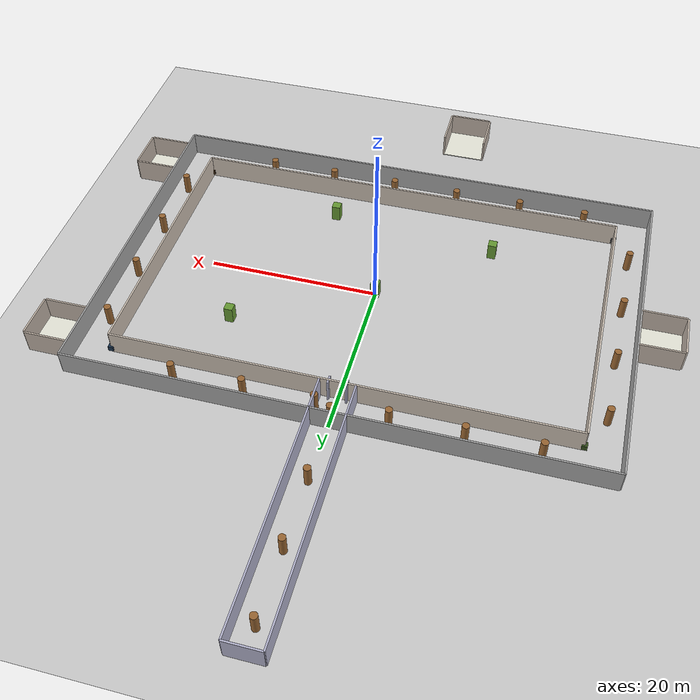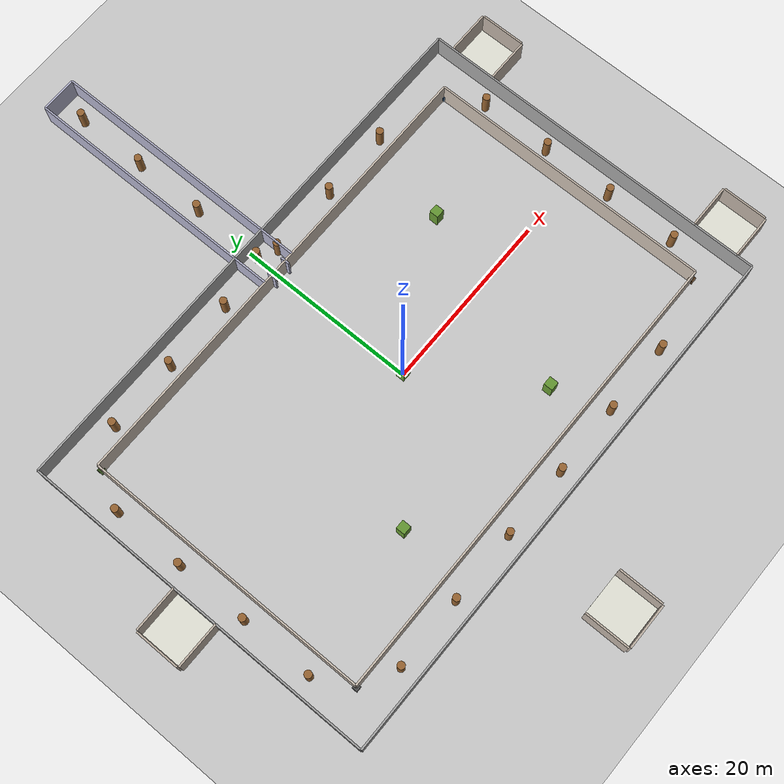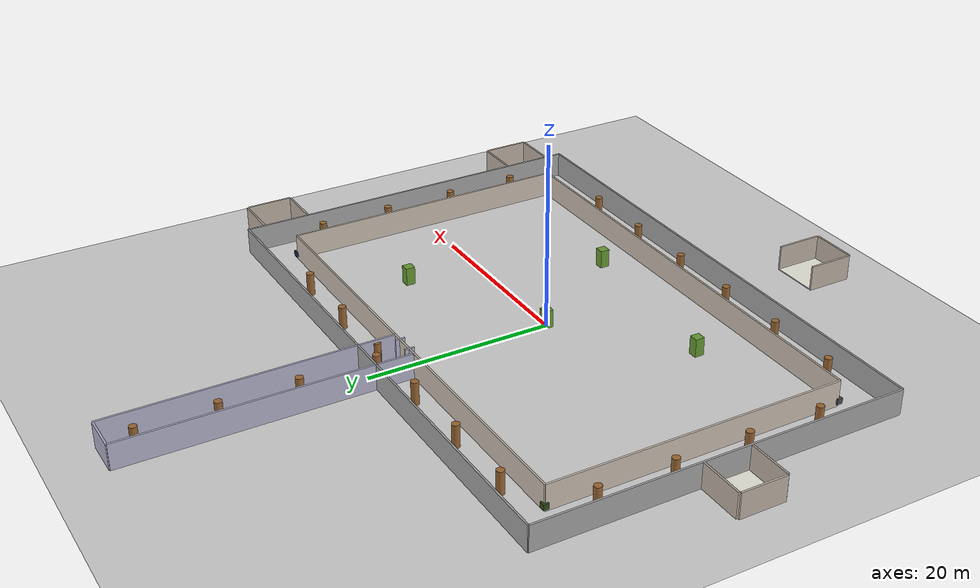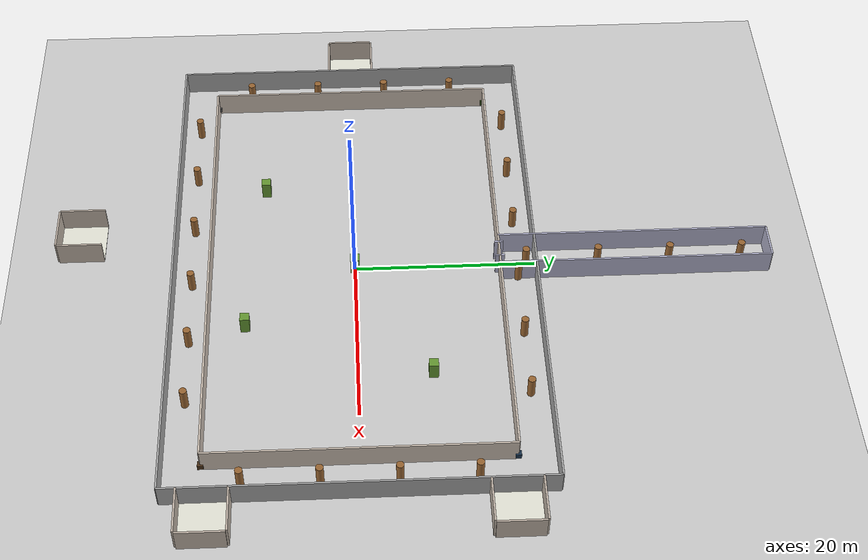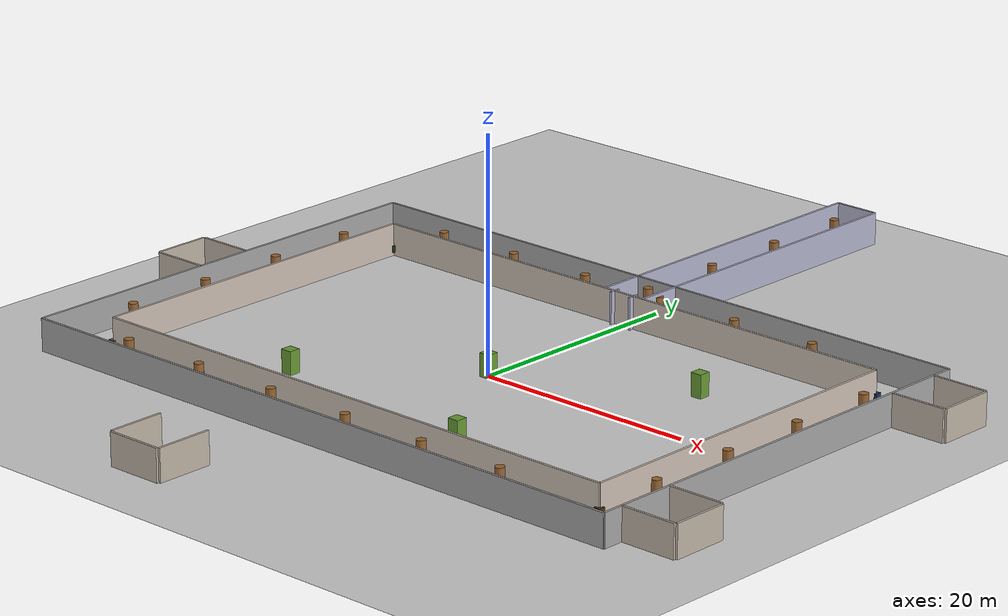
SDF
<sdf version="1.6">
 <world name="large_loop_test">
  <light name="sun" type="directional">
   <pose>0 0 20 0 0 0</pose>
   <diffuse>0.9 0.9 0.9 1</diffuse>
   <specular>0.3 0.3 0.3 1</specular>
   <direction>-0.5 0.3 -0.8</direction>
   <attenuation><range>200</range></attenuation>
  </light>
  <light name="point_light_0" type="point">
   <pose>0 0 3 0 0 0</pose>
   <diffuse>0.6 0.6 0.6 1</diffuse>
   <specular>0.1 0.1 0.1 1</specular>
   <attenuation>
    <range>25</range>
    <constant>0.5</constant>
    <linear>0.1</linear>
    <quadratic>0.01</quadratic>
   </attenuation>
  </light>
  <light name="point_light_1" type="point">
   <pose>20 0 3 0 0 0</pose>
   <diffuse>0.6 0.6 0.6 1</diffuse>
   <specular>0.1 0.1 0.1 1</specular>
   <attenuation>
    <range>25</range>
    <constant>0.5</constant>
    <linear>0.1</linear>
    <quadratic>0.01</quadratic>
   </attenuation>
  </light>
  <light name="point_light_2" type="point">
   <pose>-20 0 3 0 0 0</pose>
   <diffuse>0.6 0.6 0.6 1</diffuse>
   <specular>0.1 0.1 0.1 1</specular>
   <attenuation>
    <range>25</range>
    <constant>0.5</constant>
    <linear>0.1</linear>
    <quadratic>0.01</quadratic>
   </attenuation>
  </light>
  <light name="point_light_3" type="point">
   <pose>0 12 3 0 0 0</pose>
   <diffuse>0.6 0.6 0.6 1</diffuse>
   <specular>0.1 0.1 0.1 1</specular>
   <attenuation>
    <range>25</range>
    <constant>0.5</constant>
    <linear>0.1</linear>
    <quadratic>0.01</quadratic>
   </attenuation>
  </light>
  <gravity>0 0 -9.8</gravity>
  <physics name="physics" default="0" type="ode">
   <max_step_size>0.001</max_step_size>
   <real_time_factor>1</real_time_factor>
   <real_time_update_rate>1000</real_time_update_rate>
  </physics>
  <scene>
   <ambient>0.4 0.4 0.4 1</ambient>
   <background>0.7 0.7 0.7 1</background>
   <shadows>0</shadows>
   <grid>0</grid>
  </scene>
  <model name="ground_plane">
   <static>1</static>
   <link name="link">
    <collision name="collision">
     <geometry><plane><normal>0 0 1</normal><size>200 200</size></plane></geometry>
     <surface><friction><ode><mu>100</mu><mu2>50</mu2></ode></friction></surface>
    </collision>
    <visual name="visual">
     <geometry><plane><normal>0 0 1</normal><size>200 200</size></plane></geometry>
     <material>
      <script><uri>file://media/materials/scripts/gazebo.material</uri><name>Gazebo/Grey</name></script>
     </material>
    </visual>
   </link>
  </model>
  <model name="corridor_walls">
   <static>1</static>
   <link name="outer_bottom">
    <pose>0 -20.0 0 0 -0 0</pose>
    <collision name="outer_bottom_Collision">
     <pose>0 0 1.4 0 -0 0</pose>
     <geometry><box><size>60.0 0.2 2.8</size></box></geometry>
    </collision>
    <visual name="outer_bottom_Visual">
     <pose>0 0 1.4 0 -0 0</pose>
     <geometry><box><size>60.0 0.2 2.8</size></box></geometry>
     <material>
      <ambient>0.65 0.65 0.65 1</ambient>
      <diffuse>0.65 0.65 0.65 1</diffuse>
      <specular>0.1 0.1 0.1 1</specular>
     </material>
    </visual>
   </link>
   <link name="outer_top">
    <pose>0 20.0 0 0 -0 0</pose>
    <collision name="outer_top_Collision">
     <pose>0 0 1.4 0 -0 0</pose>
     <geometry><box><size>60.0 0.2 2.8</size></box></geometry>
    </collision>
    <visual name="outer_top_Visual">
     <pose>0 0 1.4 0 -0 0</pose>
     <geometry><box><size>60.0 0.2 2.8</size></box></geometry>
     <material>
      <ambient>0.65 0.65 0.65 1</ambient>
      <diffuse>0.65 0.65 0.65 1</diffuse>
      <specular>0.1 0.1 0.1 1</specular>
     </material>
    </visual>
   </link>
   <link name="outer_left">
    <pose>-30.0 0 0 0 -0 0</pose>
    <collision name="outer_left_Collision">
     <pose>0 0 1.4 0 -0 0</pose>
     <geometry><box><size>0.2 40.0 2.8</size></box></geometry>
    </collision>
    <visual name="outer_left_Visual">
     <pose>0 0 1.4 0 -0 0</pose>
     <geometry><box><size>0.2 40.0 2.8</size></box></geometry>
     <material>
      <ambient>0.65 0.65 0.65 1</ambient>
      <diffuse>0.65 0.65 0.65 1</diffuse>
      <specular>0.1 0.1 0.1 1</specular>
     </material>
    </visual>
   </link>
   <link name="outer_right">
    <pose>30.0 0 0 0 -0 0</pose>
    <collision name="outer_right_Collision">
     <pose>0 0 1.4 0 -0 0</pose>
     <geometry><box><size>0.2 40.0 2.8</size></box></geometry>
    </collision>
    <visual name="outer_right_Visual">
     <pose>0 0 1.4 0 -0 0</pose>
     <geometry><box><size>0.2 40.0 2.8</size></box></geometry>
     <material>
      <ambient>0.65 0.65 0.65 1</ambient>
      <diffuse>0.65 0.65 0.65 1</diffuse>
      <specular>0.1 0.1 0.1 1</specular>
     </material>
    </visual>
   </link>
   <link name="inner_bottom">
    <pose>0 -16.0 0 0 -0 0</pose>
    <collision name="inner_bottom_Collision">
     <pose>0 0 1.4 0 -0 0</pose>
     <geometry><box><size>52.0 0.2 2.8</size></box></geometry>
    </collision>
    <visual name="inner_bottom_Visual">
     <pose>0 0 1.4 0 -0 0</pose>
     <geometry><box><size>52.0 0.2 2.8</size></box></geometry>
     <material>
      <ambient>0.8 0.75 0.7 1</ambient>
      <diffuse>0.8 0.75 0.7 1</diffuse>
      <specular>0.1 0.1 0.1 1</specular>
     </material>
    </visual>
   </link>
   <link name="inner_top">
    <pose>0 16.0 0 0 -0 0</pose>
    <collision name="inner_top_Collision">
     <pose>0 0 1.4 0 -0 0</pose>
     <geometry><box><size>52.0 0.2 2.8</size></box></geometry>
    </collision>
    <visual name="inner_top_Visual">
     <pose>0 0 1.4 0 -0 0</pose>
     <geometry><box><size>52.0 0.2 2.8</size></box></geometry>
     <material>
      <ambient>0.8 0.75 0.7 1</ambient>
      <diffuse>0.8 0.75 0.7 1</diffuse>
      <specular>0.1 0.1 0.1 1</specular>
     </material>
    </visual>
   </link>
   <link name="inner_left">
    <pose>-26.0 0 0 0 -0 0</pose>
    <collision name="inner_left_Collision">
     <pose>0 0 1.4 0 -0 0</pose>
     <geometry><box><size>0.2 32.0 2.8</size></box></geometry>
    </collision>
    <visual name="inner_left_Visual">
     <pose>0 0 1.4 0 -0 0</pose>
     <geometry><box><size>0.2 32.0 2.8</size></box></geometry>
     <material>
      <ambient>0.8 0.75 0.7 1</ambient>
      <diffuse>0.8 0.75 0.7 1</diffuse>
      <specular>0.1 0.1 0.1 1</specular>
     </material>
    </visual>
   </link>
   <link name="inner_right">
    <pose>26.0 0 0 0 -0 0</pose>
    <collision name="inner_right_Collision">
     <pose>0 0 1.4 0 -0 0</pose>
     <geometry><box><size>0.2 32.0 2.8</size></box></geometry>
    </collision>
    <visual name="inner_right_Visual">
     <pose>0 0 1.4 0 -0 0</pose>
     <geometry><box><size>0.2 32.0 2.8</size></box></geometry>
     <material>
      <ambient>0.8 0.75 0.7 1</ambient>
      <diffuse>0.8 0.75 0.7 1</diffuse>
      <specular>0.1 0.1 0.1 1</specular>
     </material>
    </visual>
   </link>
  </model>
  <model name="ext_corridor">
   <static>1</static>
   <link name="ext_left">
    <pose>-2.0 31.0 0 0 -0 0</pose>
    <collision name="ext_left_Collision">
     <pose>0 0 1.4 0 -0 0</pose>
     <geometry><box><size>0.2 30.0 2.8</size></box></geometry>
    </collision>
    <visual name="ext_left_Visual">
     <pose>0 0 1.4 0 -0 0</pose>
     <geometry><box><size>0.2 30.0 2.8</size></box></geometry>
     <material>
      <ambient>0.7 0.7 0.8 1</ambient>
      <diffuse>0.7 0.7 0.8 1</diffuse>
      <specular>0.1 0.1 0.1 1</specular>
     </material>
    </visual>
   </link>
   <link name="ext_right">
    <pose>2.0 31.0 0 0 -0 0</pose>
    <collision name="ext_right_Collision">
     <pose>0 0 1.4 0 -0 0</pose>
     <geometry><box><size>0.2 30.0 2.8</size></box></geometry>
    </collision>
    <visual name="ext_right_Visual">
     <pose>0 0 1.4 0 -0 0</pose>
     <geometry><box><size>0.2 30.0 2.8</size></box></geometry>
     <material>
      <ambient>0.7 0.7 0.8 1</ambient>
      <diffuse>0.7 0.7 0.8 1</diffuse>
      <specular>0.1 0.1 0.1 1</specular>
     </material>
    </visual>
   </link>
   <link name="ext_gate_l">
    <pose>-1.0 16.0 0 0 -0 0</pose>
    <collision name="ext_gate_l_Collision">
     <pose>0 0 1.4 0 -0 0</pose>
     <geometry><box><size>0.2 1.0 2.8</size></box></geometry>
    </collision>
    <visual name="ext_gate_l_Visual">
     <pose>0 0 1.4 0 -0 0</pose>
     <geometry><box><size>0.2 1.0 2.8</size></box></geometry>
     <material>
      <ambient>0.7 0.7 0.8 1</ambient>
      <diffuse>0.7 0.7 0.8 1</diffuse>
      <specular>0.1 0.1 0.1 1</specular>
     </material>
    </visual>
   </link>
   <link name="ext_gate_r">
    <pose>1.0 16.0 0 0 -0 0</pose>
    <collision name="ext_gate_r_Collision">
     <pose>0 0 1.4 0 -0 0</pose>
     <geometry><box><size>0.2 1.0 2.8</size></box></geometry>
    </collision>
    <visual name="ext_gate_r_Visual">
     <pose>0 0 1.4 0 -0 0</pose>
     <geometry><box><size>0.2 1.0 2.8</size></box></geometry>
     <material>
      <ambient>0.7 0.7 0.8 1</ambient>
      <diffuse>0.7 0.7 0.8 1</diffuse>
      <specular>0.1 0.1 0.1 1</specular>
     </material>
    </visual>
   </link>
  </model>
  <model name="ext_end_wall">
   <static>1</static>
   <pose>0 46.0 0 0 -0 0</pose>
   <link name="ext_end_wall_link">
    <inertial><mass>1</mass></inertial>
    <collision name="collision">
     <pose>0 0 1.4 0 -0 0</pose>
     <geometry><box><size>4.0 0.2 2.8</size></box></geometry>
    </collision>
    <visual name="visual">
     <pose>0 0 1.4 0 -0 0</pose>
     <geometry><box><size>4.0 0.2 2.8</size></box></geometry>
     <material><ambient>0.7 0.7 0.8 1</ambient><diffuse>0.7 0.7 0.8 1</diffuse></material>
    </visual>
   </link>
  </model>
  <model name="pillar_000">
   <static>1</static>
   <pose>-22 -18.0 0 0 -0 0</pose>
   <link name="link">
    <inertial><mass>10</mass></inertial>
    <collision name="collision">
     <pose>0 0 1.25 0 -0 0</pose>
     <geometry><cylinder><radius>0.4</radius><length>2.5</length></cylinder></geometry>
    </collision>
    <visual name="visual">
     <pose>0 0 1.25 0 -0 0</pose>
     <geometry><cylinder><radius>0.4</radius><length>2.5</length></cylinder></geometry>
     <material><ambient>0.6 0.4 0.2 1</ambient><diffuse>0.6 0.4 0.2 1</diffuse></material>
    </visual>
   </link>
  </model>
  <model name="pillar_001">
   <static>1</static>
   <pose>-14 -18.0 0 0 -0 0</pose>
   <link name="link">
    <inertial><mass>10</mass></inertial>
    <collision name="collision">
     <pose>0 0 1.25 0 -0 0</pose>
     <geometry><cylinder><radius>0.4</radius><length>2.5</length></cylinder></geometry>
    </collision>
    <visual name="visual">
     <pose>0 0 1.25 0 -0 0</pose>
     <geometry><cylinder><radius>0.4</radius><length>2.5</length></cylinder></geometry>
     <material><ambient>0.6 0.4 0.2 1</ambient><diffuse>0.6 0.4 0.2 1</diffuse></material>
    </visual>
   </link>
  </model>
  <model name="pillar_002">
   <static>1</static>
   <pose>-6 -18.0 0 0 -0 0</pose>
   <link name="link">
    <inertial><mass>10</mass></inertial>
    <collision name="collision">
     <pose>0 0 1.25 0 -0 0</pose>
     <geometry><cylinder><radius>0.4</radius><length>2.5</length></cylinder></geometry>
    </collision>
    <visual name="visual">
     <pose>0 0 1.25 0 -0 0</pose>
     <geometry><cylinder><radius>0.4</radius><length>2.5</length></cylinder></geometry>
     <material><ambient>0.6 0.4 0.2 1</ambient><diffuse>0.6 0.4 0.2 1</diffuse></material>
    </visual>
   </link>
  </model>
  <model name="pillar_003">
   <static>1</static>
   <pose>2 -18.0 0 0 -0 0</pose>
   <link name="link">
    <inertial><mass>10</mass></inertial>
    <collision name="collision">
     <pose>0 0 1.25 0 -0 0</pose>
     <geometry><cylinder><radius>0.4</radius><length>2.5</length></cylinder></geometry>
    </collision>
    <visual name="visual">
     <pose>0 0 1.25 0 -0 0</pose>
     <geometry><cylinder><radius>0.4</radius><length>2.5</length></cylinder></geometry>
     <material><ambient>0.6 0.4 0.2 1</ambient><diffuse>0.6 0.4 0.2 1</diffuse></material>
    </visual>
   </link>
  </model>
  <model name="pillar_004">
   <static>1</static>
   <pose>10 -18.0 0 0 -0 0</pose>
   <link name="link">
    <inertial><mass>10</mass></inertial>
    <collision name="collision">
     <pose>0 0 1.25 0 -0 0</pose>
     <geometry><cylinder><radius>0.4</radius><length>2.5</length></cylinder></geometry>
    </collision>
    <visual name="visual">
     <pose>0 0 1.25 0 -0 0</pose>
     <geometry><cylinder><radius>0.4</radius><length>2.5</length></cylinder></geometry>
     <material><ambient>0.6 0.4 0.2 1</ambient><diffuse>0.6 0.4 0.2 1</diffuse></material>
    </visual>
   </link>
  </model>
  <model name="pillar_005">
   <static>1</static>
   <pose>18 -18.0 0 0 -0 0</pose>
   <link name="link">
    <inertial><mass>10</mass></inertial>
    <collision name="collision">
     <pose>0 0 1.25 0 -0 0</pose>
     <geometry><cylinder><radius>0.4</radius><length>2.5</length></cylinder></geometry>
    </collision>
    <visual name="visual">
     <pose>0 0 1.25 0 -0 0</pose>
     <geometry><cylinder><radius>0.4</radius><length>2.5</length></cylinder></geometry>
     <material><ambient>0.6 0.4 0.2 1</ambient><diffuse>0.6 0.4 0.2 1</diffuse></material>
    </visual>
   </link>
  </model>
  <model name="pillar_006">
   <static>1</static>
   <pose>-22 18.0 0 0 -0 0</pose>
   <link name="link">
    <inertial><mass>10</mass></inertial>
    <collision name="collision">
     <pose>0 0 1.25 0 -0 0</pose>
     <geometry><cylinder><radius>0.4</radius><length>2.5</length></cylinder></geometry>
    </collision>
    <visual name="visual">
     <pose>0 0 1.25 0 -0 0</pose>
     <geometry><cylinder><radius>0.4</radius><length>2.5</length></cylinder></geometry>
     <material><ambient>0.6 0.4 0.2 1</ambient><diffuse>0.6 0.4 0.2 1</diffuse></material>
    </visual>
   </link>
  </model>
  <model name="pillar_007">
   <static>1</static>
   <pose>-14 18.0 0 0 -0 0</pose>
   <link name="link">
    <inertial><mass>10</mass></inertial>
    <collision name="collision">
     <pose>0 0 1.25 0 -0 0</pose>
     <geometry><cylinder><radius>0.4</radius><length>2.5</length></cylinder></geometry>
    </collision>
    <visual name="visual">
     <pose>0 0 1.25 0 -0 0</pose>
     <geometry><cylinder><radius>0.4</radius><length>2.5</length></cylinder></geometry>
     <material><ambient>0.6 0.4 0.2 1</ambient><diffuse>0.6 0.4 0.2 1</diffuse></material>
    </visual>
   </link>
  </model>
  <model name="pillar_008">
   <static>1</static>
   <pose>-6 18.0 0 0 -0 0</pose>
   <link name="link">
    <inertial><mass>10</mass></inertial>
    <collision name="collision">
     <pose>0 0 1.25 0 -0 0</pose>
     <geometry><cylinder><radius>0.4</radius><length>2.5</length></cylinder></geometry>
    </collision>
    <visual name="visual">
     <pose>0 0 1.25 0 -0 0</pose>
     <geometry><cylinder><radius>0.4</radius><length>2.5</length></cylinder></geometry>
     <material><ambient>0.6 0.4 0.2 1</ambient><diffuse>0.6 0.4 0.2 1</diffuse></material>
    </visual>
   </link>
  </model>
  <model name="pillar_009">
   <static>1</static>
   <pose>2 18.0 0 0 -0 0</pose>
   <link name="link">
    <inertial><mass>10</mass></inertial>
    <collision name="collision">
     <pose>0 0 1.25 0 -0 0</pose>
     <geometry><cylinder><radius>0.4</radius><length>2.5</length></cylinder></geometry>
    </collision>
    <visual name="visual">
     <pose>0 0 1.25 0 -0 0</pose>
     <geometry><cylinder><radius>0.4</radius><length>2.5</length></cylinder></geometry>
     <material><ambient>0.6 0.4 0.2 1</ambient><diffuse>0.6 0.4 0.2 1</diffuse></material>
    </visual>
   </link>
  </model>
  <model name="pillar_010">
   <static>1</static>
   <pose>10 18.0 0 0 -0 0</pose>
   <link name="link">
    <inertial><mass>10</mass></inertial>
    <collision name="collision">
     <pose>0 0 1.25 0 -0 0</pose>
     <geometry><cylinder><radius>0.4</radius><length>2.5</length></cylinder></geometry>
    </collision>
    <visual name="visual">
     <pose>0 0 1.25 0 -0 0</pose>
     <geometry><cylinder><radius>0.4</radius><length>2.5</length></cylinder></geometry>
     <material><ambient>0.6 0.4 0.2 1</ambient><diffuse>0.6 0.4 0.2 1</diffuse></material>
    </visual>
   </link>
  </model>
  <model name="pillar_011">
   <static>1</static>
   <pose>18 18.0 0 0 -0 0</pose>
   <link name="link">
    <inertial><mass>10</mass></inertial>
    <collision name="collision">
     <pose>0 0 1.25 0 -0 0</pose>
     <geometry><cylinder><radius>0.4</radius><length>2.5</length></cylinder></geometry>
    </collision>
    <visual name="visual">
     <pose>0 0 1.25 0 -0 0</pose>
     <geometry><cylinder><radius>0.4</radius><length>2.5</length></cylinder></geometry>
     <material><ambient>0.6 0.4 0.2 1</ambient><diffuse>0.6 0.4 0.2 1</diffuse></material>
    </visual>
   </link>
  </model>
  <model name="pillar_012">
   <static>1</static>
   <pose>-28.0 -12 0 0 -0 0</pose>
   <link name="link">
    <inertial><mass>10</mass></inertial>
    <collision name="collision">
     <pose>0 0 1.25 0 -0 0</pose>
     <geometry><cylinder><radius>0.4</radius><length>2.5</length></cylinder></geometry>
    </collision>
    <visual name="visual">
     <pose>0 0 1.25 0 -0 0</pose>
     <geometry><cylinder><radius>0.4</radius><length>2.5</length></cylinder></geometry>
     <material><ambient>0.6 0.4 0.2 1</ambient><diffuse>0.6 0.4 0.2 1</diffuse></material>
    </visual>
   </link>
  </model>
  <model name="pillar_013">
   <static>1</static>
   <pose>-28.0 -4 0 0 -0 0</pose>
   <link name="link">
    <inertial><mass>10</mass></inertial>
    <collision name="collision">
     <pose>0 0 1.25 0 -0 0</pose>
     <geometry><cylinder><radius>0.4</radius><length>2.5</length></cylinder></geometry>
    </collision>
    <visual name="visual">
     <pose>0 0 1.25 0 -0 0</pose>
     <geometry><cylinder><radius>0.4</radius><length>2.5</length></cylinder></geometry>
     <material><ambient>0.6 0.4 0.2 1</ambient><diffuse>0.6 0.4 0.2 1</diffuse></material>
    </visual>
   </link>
  </model>
  <model name="pillar_014">
   <static>1</static>
   <pose>-28.0 4 0 0 -0 0</pose>
   <link name="link">
    <inertial><mass>10</mass></inertial>
    <collision name="collision">
     <pose>0 0 1.25 0 -0 0</pose>
     <geometry><cylinder><radius>0.4</radius><length>2.5</length></cylinder></geometry>
    </collision>
    <visual name="visual">
     <pose>0 0 1.25 0 -0 0</pose>
     <geometry><cylinder><radius>0.4</radius><length>2.5</length></cylinder></geometry>
     <material><ambient>0.6 0.4 0.2 1</ambient><diffuse>0.6 0.4 0.2 1</diffuse></material>
    </visual>
   </link>
  </model>
  <model name="pillar_015">
   <static>1</static>
   <pose>-28.0 12 0 0 -0 0</pose>
   <link name="link">
    <inertial><mass>10</mass></inertial>
    <collision name="collision">
     <pose>0 0 1.25 0 -0 0</pose>
     <geometry><cylinder><radius>0.4</radius><length>2.5</length></cylinder></geometry>
    </collision>
    <visual name="visual">
     <pose>0 0 1.25 0 -0 0</pose>
     <geometry><cylinder><radius>0.4</radius><length>2.5</length></cylinder></geometry>
     <material><ambient>0.6 0.4 0.2 1</ambient><diffuse>0.6 0.4 0.2 1</diffuse></material>
    </visual>
   </link>
  </model>
  <model name="pillar_016">
   <static>1</static>
   <pose>28.0 -12 0 0 -0 0</pose>
   <link name="link">
    <inertial><mass>10</mass></inertial>
    <collision name="collision">
     <pose>0 0 1.25 0 -0 0</pose>
     <geometry><cylinder><radius>0.4</radius><length>2.5</length></cylinder></geometry>
    </collision>
    <visual name="visual">
     <pose>0 0 1.25 0 -0 0</pose>
     <geometry><cylinder><radius>0.4</radius><length>2.5</length></cylinder></geometry>
     <material><ambient>0.6 0.4 0.2 1</ambient><diffuse>0.6 0.4 0.2 1</diffuse></material>
    </visual>
   </link>
  </model>
  <model name="pillar_017">
   <static>1</static>
   <pose>28.0 -4 0 0 -0 0</pose>
   <link name="link">
    <inertial><mass>10</mass></inertial>
    <collision name="collision">
     <pose>0 0 1.25 0 -0 0</pose>
     <geometry><cylinder><radius>0.4</radius><length>2.5</length></cylinder></geometry>
    </collision>
    <visual name="visual">
     <pose>0 0 1.25 0 -0 0</pose>
     <geometry><cylinder><radius>0.4</radius><length>2.5</length></cylinder></geometry>
     <material><ambient>0.6 0.4 0.2 1</ambient><diffuse>0.6 0.4 0.2 1</diffuse></material>
    </visual>
   </link>
  </model>
  <model name="pillar_018">
   <static>1</static>
   <pose>28.0 4 0 0 -0 0</pose>
   <link name="link">
    <inertial><mass>10</mass></inertial>
    <collision name="collision">
     <pose>0 0 1.25 0 -0 0</pose>
     <geometry><cylinder><radius>0.4</radius><length>2.5</length></cylinder></geometry>
    </collision>
    <visual name="visual">
     <pose>0 0 1.25 0 -0 0</pose>
     <geometry><cylinder><radius>0.4</radius><length>2.5</length></cylinder></geometry>
     <material><ambient>0.6 0.4 0.2 1</ambient><diffuse>0.6 0.4 0.2 1</diffuse></material>
    </visual>
   </link>
  </model>
  <model name="pillar_019">
   <static>1</static>
   <pose>28.0 12 0 0 -0 0</pose>
   <link name="link">
    <inertial><mass>10</mass></inertial>
    <collision name="collision">
     <pose>0 0 1.25 0 -0 0</pose>
     <geometry><cylinder><radius>0.4</radius><length>2.5</length></cylinder></geometry>
    </collision>
    <visual name="visual">
     <pose>0 0 1.25 0 -0 0</pose>
     <geometry><cylinder><radius>0.4</radius><length>2.5</length></cylinder></geometry>
     <material><ambient>0.6 0.4 0.2 1</ambient><diffuse>0.6 0.4 0.2 1</diffuse></material>
    </visual>
   </link>
  </model>
  <model name="pillar_020">
   <static>1</static>
   <pose>0 19 0 0 -0 0</pose>
   <link name="link">
    <inertial><mass>10</mass></inertial>
    <collision name="collision">
     <pose>0 0 1.25 0 -0 0</pose>
     <geometry><cylinder><radius>0.4</radius><length>2.5</length></cylinder></geometry>
    </collision>
    <visual name="visual">
     <pose>0 0 1.25 0 -0 0</pose>
     <geometry><cylinder><radius>0.4</radius><length>2.5</length></cylinder></geometry>
     <material><ambient>0.6 0.4 0.2 1</ambient><diffuse>0.6 0.4 0.2 1</diffuse></material>
    </visual>
   </link>
  </model>
  <model name="pillar_021">
   <static>1</static>
   <pose>0 27 0 0 -0 0</pose>
   <link name="link">
    <inertial><mass>10</mass></inertial>
    <collision name="collision">
     <pose>0 0 1.25 0 -0 0</pose>
     <geometry><cylinder><radius>0.4</radius><length>2.5</length></cylinder></geometry>
    </collision>
    <visual name="visual">
     <pose>0 0 1.25 0 -0 0</pose>
     <geometry><cylinder><radius>0.4</radius><length>2.5</length></cylinder></geometry>
     <material><ambient>0.6 0.4 0.2 1</ambient><diffuse>0.6 0.4 0.2 1</diffuse></material>
    </visual>
   </link>
  </model>
  <model name="pillar_022">
   <static>1</static>
   <pose>0 35 0 0 -0 0</pose>
   <link name="link">
    <inertial><mass>10</mass></inertial>
    <collision name="collision">
     <pose>0 0 1.25 0 -0 0</pose>
     <geometry><cylinder><radius>0.4</radius><length>2.5</length></cylinder></geometry>
    </collision>
    <visual name="visual">
     <pose>0 0 1.25 0 -0 0</pose>
     <geometry><cylinder><radius>0.4</radius><length>2.5</length></cylinder></geometry>
     <material><ambient>0.6 0.4 0.2 1</ambient><diffuse>0.6 0.4 0.2 1</diffuse></material>
    </visual>
   </link>
  </model>
  <model name="pillar_023">
   <static>1</static>
   <pose>0 43 0 0 -0 0</pose>
   <link name="link">
    <inertial><mass>10</mass></inertial>
    <collision name="collision">
     <pose>0 0 1.25 0 -0 0</pose>
     <geometry><cylinder><radius>0.4</radius><length>2.5</length></cylinder></geometry>
    </collision>
    <visual name="visual">
     <pose>0 0 1.25 0 -0 0</pose>
     <geometry><cylinder><radius>0.4</radius><length>2.5</length></cylinder></geometry>
     <material><ambient>0.6 0.4 0.2 1</ambient><diffuse>0.6 0.4 0.2 1</diffuse></material>
    </visual>
   </link>
  </model>
  <model name="room_a_floor">
   <static>1</static>
   <pose>32.5 -15.5 0.01 0 -0 0</pose>
   <link name="room_a_floor_link">
    <inertial><mass>1</mass></inertial>
    <collision name="collision">
     <pose>0 0 0.05 0 -0 0</pose>
     <geometry><box><size>5.0 5.0 0.1</size></box></geometry>
    </collision>
    <visual name="visual">
     <pose>0 0 0.05 0 -0 0</pose>
     <geometry><box><size>5.0 5.0 0.1</size></box></geometry>
     <material><ambient>0.9 0.9 0.85 1</ambient><diffuse>0.9 0.9 0.85 1</diffuse></material>
    </visual>
   </link>
  </model>
  <model name="room_a_wall_back">
   <static>1</static>
   <pose>35.1 -15.5 0 0 -0 0</pose>
   <link name="room_a_wall_back_link">
    <inertial><mass>1</mass></inertial>
    <collision name="collision">
     <pose>0 0 1.4 0 -0 0</pose>
     <geometry><box><size>0.2 5.0 2.8</size></box></geometry>
    </collision>
    <visual name="visual">
     <pose>0 0 1.4 0 -0 0</pose>
     <geometry><box><size>0.2 5.0 2.8</size></box></geometry>
     <material><ambient>0.75 0.7 0.65 1</ambient><diffuse>0.75 0.7 0.65 1</diffuse></material>
    </visual>
   </link>
  </model>
  <model name="room_a_wall_top">
   <static>1</static>
   <pose>32.5 -12.9 0 0 -0 0</pose>
   <link name="room_a_wall_top_link">
    <inertial><mass>1</mass></inertial>
    <collision name="collision">
     <pose>0 0 1.4 0 -0 0</pose>
     <geometry><box><size>5.0 0.2 2.8</size></box></geometry>
    </collision>
    <visual name="visual">
     <pose>0 0 1.4 0 -0 0</pose>
     <geometry><box><size>5.0 0.2 2.8</size></box></geometry>
     <material><ambient>0.75 0.7 0.65 1</ambient><diffuse>0.75 0.7 0.65 1</diffuse></material>
    </visual>
   </link>
  </model>
  <model name="room_a_wall_bottom">
   <static>1</static>
   <pose>32.5 -18.1 0 0 -0 0</pose>
   <link name="room_a_wall_bottom_link">
    <inertial><mass>1</mass></inertial>
    <collision name="collision">
     <pose>0 0 1.4 0 -0 0</pose>
     <geometry><box><size>5.0 0.2 2.8</size></box></geometry>
    </collision>
    <visual name="visual">
     <pose>0 0 1.4 0 -0 0</pose>
     <geometry><box><size>5.0 0.2 2.8</size></box></geometry>
     <material><ambient>0.75 0.7 0.65 1</ambient><diffuse>0.75 0.7 0.65 1</diffuse></material>
    </visual>
   </link>
  </model>
  <model name="room_b_floor">
   <static>1</static>
   <pose>32.5 15.5 0.01 0 -0 0</pose>
   <link name="room_b_floor_link">
    <inertial><mass>1</mass></inertial>
    <collision name="collision">
     <pose>0 0 0.05 0 -0 0</pose>
     <geometry><box><size>5.0 5.0 0.1</size></box></geometry>
    </collision>
    <visual name="visual">
     <pose>0 0 0.05 0 -0 0</pose>
     <geometry><box><size>5.0 5.0 0.1</size></box></geometry>
     <material><ambient>0.9 0.9 0.85 1</ambient><diffuse>0.9 0.9 0.85 1</diffuse></material>
    </visual>
   </link>
  </model>
  <model name="room_b_wall_back">
   <static>1</static>
   <pose>35.1 15.5 0 0 -0 0</pose>
   <link name="room_b_wall_back_link">
    <inertial><mass>1</mass></inertial>
    <collision name="collision">
     <pose>0 0 1.4 0 -0 0</pose>
     <geometry><box><size>0.2 5.0 2.8</size></box></geometry>
    </collision>
    <visual name="visual">
     <pose>0 0 1.4 0 -0 0</pose>
     <geometry><box><size>0.2 5.0 2.8</size></box></geometry>
     <material><ambient>0.75 0.7 0.65 1</ambient><diffuse>0.75 0.7 0.65 1</diffuse></material>
    </visual>
   </link>
  </model>
  <model name="room_b_wall_top">
   <static>1</static>
   <pose>32.5 18.1 0 0 -0 0</pose>
   <link name="room_b_wall_top_link">
    <inertial><mass>1</mass></inertial>
    <collision name="collision">
     <pose>0 0 1.4 0 -0 0</pose>
     <geometry><box><size>5.0 0.2 2.8</size></box></geometry>
    </collision>
    <visual name="visual">
     <pose>0 0 1.4 0 -0 0</pose>
     <geometry><box><size>5.0 0.2 2.8</size></box></geometry>
     <material><ambient>0.75 0.7 0.65 1</ambient><diffuse>0.75 0.7 0.65 1</diffuse></material>
    </visual>
   </link>
  </model>
  <model name="room_b_wall_bottom">
   <static>1</static>
   <pose>32.5 12.9 0 0 -0 0</pose>
   <link name="room_b_wall_bottom_link">
    <inertial><mass>1</mass></inertial>
    <collision name="collision">
     <pose>0 0 1.4 0 -0 0</pose>
     <geometry><box><size>5.0 0.2 2.8</size></box></geometry>
    </collision>
    <visual name="visual">
     <pose>0 0 1.4 0 -0 0</pose>
     <geometry><box><size>5.0 0.2 2.8</size></box></geometry>
     <material><ambient>0.75 0.7 0.65 1</ambient><diffuse>0.75 0.7 0.65 1</diffuse></material>
    </visual>
   </link>
  </model>
  <model name="room_c_floor">
   <static>1</static>
   <pose>-32.5 0 0.01 0 -0 0</pose>
   <link name="room_c_floor_link">
    <inertial><mass>1</mass></inertial>
    <collision name="collision">
     <pose>0 0 0.05 0 -0 0</pose>
     <geometry><box><size>5.0 5.0 0.1</size></box></geometry>
    </collision>
    <visual name="visual">
     <pose>0 0 0.05 0 -0 0</pose>
     <geometry><box><size>5.0 5.0 0.1</size></box></geometry>
     <material><ambient>0.9 0.9 0.85 1</ambient><diffuse>0.9 0.9 0.85 1</diffuse></material>
    </visual>
   </link>
  </model>
  <model name="room_c_wall_back">
   <static>1</static>
   <pose>-35.1 0 0 0 -0 0</pose>
   <link name="room_c_wall_back_link">
    <inertial><mass>1</mass></inertial>
    <collision name="collision">
     <pose>0 0 1.4 0 -0 0</pose>
     <geometry><box><size>0.2 5.0 2.8</size></box></geometry>
    </collision>
    <visual name="visual">
     <pose>0 0 1.4 0 -0 0</pose>
     <geometry><box><size>0.2 5.0 2.8</size></box></geometry>
     <material><ambient>0.75 0.7 0.65 1</ambient><diffuse>0.75 0.7 0.65 1</diffuse></material>
    </visual>
   </link>
  </model>
  <model name="room_c_wall_top">
   <static>1</static>
   <pose>-32.5 2.6 0 0 -0 0</pose>
   <link name="room_c_wall_top_link">
    <inertial><mass>1</mass></inertial>
    <collision name="collision">
     <pose>0 0 1.4 0 -0 0</pose>
     <geometry><box><size>5.0 0.2 2.8</size></box></geometry>
    </collision>
    <visual name="visual">
     <pose>0 0 1.4 0 -0 0</pose>
     <geometry><box><size>5.0 0.2 2.8</size></box></geometry>
     <material><ambient>0.75 0.7 0.65 1</ambient><diffuse>0.75 0.7 0.65 1</diffuse></material>
    </visual>
   </link>
  </model>
  <model name="room_c_wall_bottom">
   <static>1</static>
   <pose>-32.5 -2.6 0 0 -0 0</pose>
   <link name="room_c_wall_bottom_link">
    <inertial><mass>1</mass></inertial>
    <collision name="collision">
     <pose>0 0 1.4 0 -0 0</pose>
     <geometry><box><size>5.0 0.2 2.8</size></box></geometry>
    </collision>
    <visual name="visual">
     <pose>0 0 1.4 0 -0 0</pose>
     <geometry><box><size>5.0 0.2 2.8</size></box></geometry>
     <material><ambient>0.75 0.7 0.65 1</ambient><diffuse>0.75 0.7 0.65 1</diffuse></material>
    </visual>
   </link>
  </model>
  <model name="room_d_floor">
   <static>1</static>
   <pose>-5 -30.5 0.01 0 -0 0</pose>
   <link name="room_d_floor_link">
    <inertial><mass>1</mass></inertial>
    <collision name="collision">
     <pose>0 0 0.05 0 -0 0</pose>
     <geometry><box><size>5.0 5.0 0.1</size></box></geometry>
    </collision>
    <visual name="visual">
     <pose>0 0 0.05 0 -0 0</pose>
     <geometry><box><size>5.0 5.0 0.1</size></box></geometry>
     <material><ambient>0.9 0.9 0.85 1</ambient><diffuse>0.9 0.9 0.85 1</diffuse></material>
    </visual>
   </link>
  </model>
  <model name="room_d_wall_back">
   <static>1</static>
   <pose>-5 -33.1 0 0 -0 0</pose>
   <link name="room_d_wall_back_link">
    <inertial><mass>1</mass></inertial>
    <collision name="collision">
     <pose>0 0 1.4 0 -0 0</pose>
     <geometry><box><size>5.0 0.2 2.8</size></box></geometry>
    </collision>
    <visual name="visual">
     <pose>0 0 1.4 0 -0 0</pose>
     <geometry><box><size>5.0 0.2 2.8</size></box></geometry>
     <material><ambient>0.75 0.7 0.65 1</ambient><diffuse>0.75 0.7 0.65 1</diffuse></material>
    </visual>
   </link>
  </model>
  <model name="room_d_wall_left">
   <static>1</static>
   <pose>-7.6 -30.5 0 0 -0 0</pose>
   <link name="room_d_wall_left_link">
    <inertial><mass>1</mass></inertial>
    <collision name="collision">
     <pose>0 0 1.4 0 -0 0</pose>
     <geometry><box><size>0.2 5.0 2.8</size></box></geometry>
    </collision>
    <visual name="visual">
     <pose>0 0 1.4 0 -0 0</pose>
     <geometry><box><size>0.2 5.0 2.8</size></box></geometry>
     <material><ambient>0.75 0.7 0.65 1</ambient><diffuse>0.75 0.7 0.65 1</diffuse></material>
    </visual>
   </link>
  </model>
  <model name="room_d_wall_right">
   <static>1</static>
   <pose>-2.4 -30.5 0 0 -0 0</pose>
   <link name="room_d_wall_right_link">
    <inertial><mass>1</mass></inertial>
    <collision name="collision">
     <pose>0 0 1.4 0 -0 0</pose>
     <geometry><box><size>0.2 5.0 2.8</size></box></geometry>
    </collision>
    <visual name="visual">
     <pose>0 0 1.4 0 -0 0</pose>
     <geometry><box><size>0.2 5.0 2.8</size></box></geometry>
     <material><ambient>0.75 0.7 0.65 1</ambient><diffuse>0.75 0.7 0.65 1</diffuse></material>
    </visual>
   </link>
  </model>
  <model name="obstacle_0">
   <static>1</static>
   <pose>-26.0 -16.0 0.3 0 -0 0</pose>
   <link name="obstacle_0_link">
    <inertial><mass>1</mass></inertial>
    <collision name="collision">
     <pose>0 0 0.3 0 -0 0</pose>
     <geometry><box><size>0.6 0.6 0.6</size></box></geometry>
    </collision>
    <visual name="visual">
     <pose>0 0 0.3 0 -0 0</pose>
     <geometry><box><size>0.6 0.6 0.6</size></box></geometry>
     <material><ambient>0.3 0.3 0.3 1</ambient><diffuse>0.3 0.3 0.3 1</diffuse></material>
    </visual>
   </link>
  </model>
  <model name="obstacle_1">
   <static>1</static>
   <pose>26.0 -16.0 0.3 0 -0 0</pose>
   <link name="obstacle_1_link">
    <inertial><mass>1</mass></inertial>
    <collision name="collision">
     <pose>0 0 0.3 0 -0 0</pose>
     <geometry><box><size>0.6 0.6 0.6</size></box></geometry>
    </collision>
    <visual name="visual">
     <pose>0 0 0.3 0 -0 0</pose>
     <geometry><box><size>0.6 0.6 0.6</size></box></geometry>
     <material><ambient>0.3 0.2 0.1 1</ambient><diffuse>0.3 0.2 0.1 1</diffuse></material>
    </visual>
   </link>
  </model>
  <model name="obstacle_2">
   <static>1</static>
   <pose>-26.0 16.0 0.3 0 -0 0</pose>
   <link name="obstacle_2_link">
    <inertial><mass>1</mass></inertial>
    <collision name="collision">
     <pose>0 0 0.3 0 -0 0</pose>
     <geometry><box><size>0.6 0.6 0.6</size></box></geometry>
    </collision>
    <visual name="visual">
     <pose>0 0 0.3 0 -0 0</pose>
     <geometry><box><size>0.6 0.6 0.6</size></box></geometry>
     <material><ambient>0.2 0.3 0.1 1</ambient><diffuse>0.2 0.3 0.1 1</diffuse></material>
    </visual>
   </link>
  </model>
  <model name="obstacle_3">
   <static>1</static>
   <pose>26.0 16.0 0.3 0 -0 0</pose>
   <link name="obstacle_3_link">
    <inertial><mass>1</mass></inertial>
    <collision name="collision">
     <pose>0 0 0.3 0 -0 0</pose>
     <geometry><box><size>0.6 0.6 0.6</size></box></geometry>
    </collision>
    <visual name="visual">
     <pose>0 0 0.3 0 -0 0</pose>
     <geometry><box><size>0.6 0.6 0.6</size></box></geometry>
     <material><ambient>0.1 0.2 0.3 1</ambient><diffuse>0.1 0.2 0.3 1</diffuse></material>
    </visual>
   </link>
  </model>
  <model name="feature_pillar_0">
   <static>1</static>
   <link name="feature_pillar_0_link">
    <inertial><mass>1</mass></inertial>
    <collision name="collision">
     <pose>0 0 1.0 0 -0 0</pose>
     <geometry><box><size>1.0 1.0 2.0</size></box></geometry>
    </collision>
    <visual name="visual">
     <pose>0 0 1.0 0 -0 0</pose>
     <geometry><box><size>1.0 1.0 2.0</size></box></geometry>
     <material><ambient>0.4 0.6 0.2 1</ambient><diffuse>0.4 0.6 0.2 1</diffuse></material>
    </visual>
   </link>
  </model>
  <model name="feature_pillar_1">
   <static>1</static>
   <pose>15 8 0 0 -0 0</pose>
   <link name="feature_pillar_1_link">
    <inertial><mass>1</mass></inertial>
    <collision name="collision">
     <pose>0 0 1.0 0 -0 0</pose>
     <geometry><box><size>1.0 1.0 2.0</size></box></geometry>
    </collision>
    <visual name="visual">
     <pose>0 0 1.0 0 -0 0</pose>
     <geometry><box><size>1.0 1.0 2.0</size></box></geometry>
     <material><ambient>0.4 0.6 0.2 1</ambient><diffuse>0.4 0.6 0.2 1</diffuse></material>
    </visual>
   </link>
  </model>
  <model name="feature_pillar_2">
   <static>1</static>
   <pose>-12 -10 0 0 -0 0</pose>
   <link name="feature_pillar_2_link">
    <inertial><mass>1</mass></inertial>
    <collision name="collision">
     <pose>0 0 1.0 0 -0 0</pose>
     <geometry><box><size>1.0 1.0 2.0</size></box></geometry>
    </collision>
    <visual name="visual">
     <pose>0 0 1.0 0 -0 0</pose>
     <geometry><box><size>1.0 1.0 2.0</size></box></geometry>
     <material><ambient>0.4 0.6 0.2 1</ambient><diffuse>0.4 0.6 0.2 1</diffuse></material>
    </visual>
   </link>
  </model>
  <model name="feature_pillar_3">
   <static>1</static>
   <pose>8 -12 0 0 -0 0</pose>
   <link name="feature_pillar_3_link">
    <inertial><mass>1</mass></inertial>
    <collision name="collision">
     <pose>0 0 1.0 0 -0 0</pose>
     <geometry><box><size>1.0 1.0 2.0</size></box></geometry>
    </collision>
    <visual name="visual">
     <pose>0 0 1.0 0 -0 0</pose>
     <geometry><box><size>1.0 1.0 2.0</size></box></geometry>
     <material><ambient>0.4 0.6 0.2 1</ambient><diffuse>0.4 0.6 0.2 1</diffuse></material>
    </visual>
   </link>
  </model>
 </world>
</sdf>
